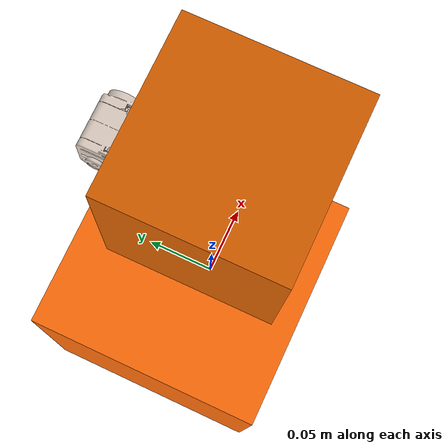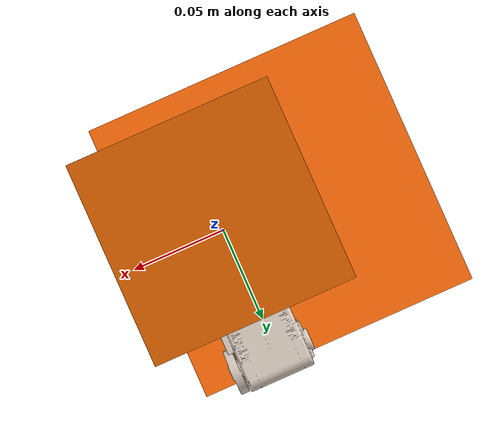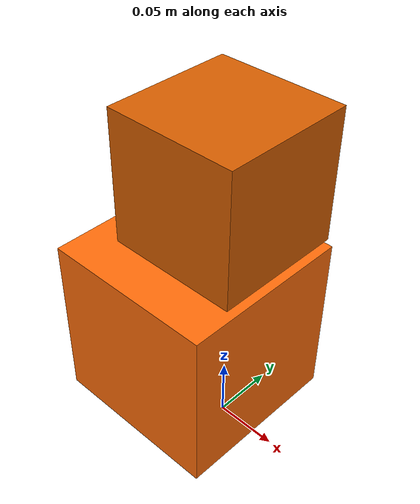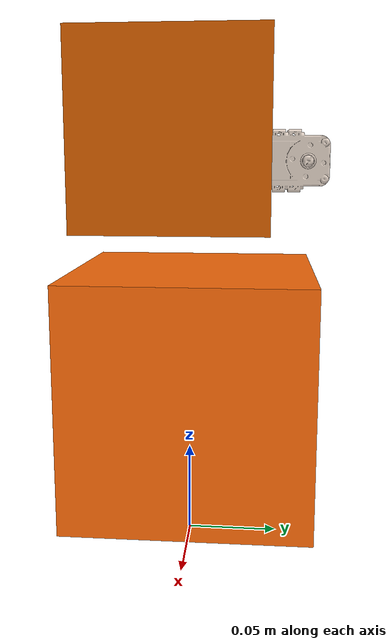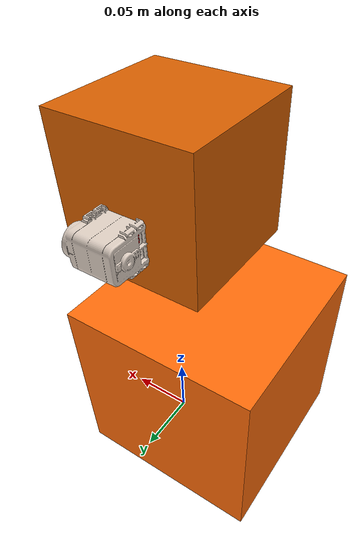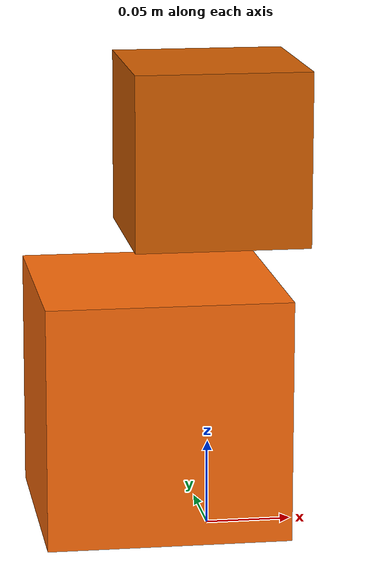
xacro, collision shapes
<?xml version="1.0" ?>
<robot name="tb3_kai" xmlns:xacro="http://ros.org/wiki/xacro">
  <xacro:include filename="$(find tb3kai_spinhokuyo)/urdf/common_properties.xacro"/>
  <xacro:include filename="$(find tb3kai_spinhokuyo)/urdf/turtlebot3_burger.gazebo.xacro"/>

  <!-- World -->
  <link name="world">
  </link>

  <!-- World fixed joint-->
  <joint name="world_fixed" type="fixed">
    <origin xyz="0 0 0" rpy="0 0 0"/>
    <parent link="world"/>
    <child link="base_footprint"/>
  </joint>

  <link name="base_footprint"/>

  <joint name="base_joint" type="fixed">
    <parent link="base_footprint"/>
    <child link="base_link"/>
    <origin xyz="0.0 0.0 0.010" rpy="0 0 0"/>
  </joint>

  <link name="base_link">
    <visual>
      <origin xyz="-0.032 0 0.0" rpy="0 0 0"/>
      <geometry>
        <mesh filename="package://tb3kai_description/meshes/bases/burger_base.stl" scale="0.001 0.001 0.001"/>
      </geometry>
      <material name="orange"/>
    </visual>

    <collision>
      <origin xyz="-0.032 0 0.070" rpy="0 0 0"/>
      <geometry>
        <box size="0.140 0.140 0.140"/>
      </geometry>
    </collision>

    <inertial>
      <origin xyz="-0.032 0 0" rpy="0 0 0"/>
      <mass value="1"/>
      <inertia ixx="0.01" ixy="0.0" ixz="0.0"
               iyy="0.01" iyz="0.0"
               izz="0.01" />
    </inertial>
  </link>

  <!-- AX-18 Motor and stand -->
  <joint name="laser_servo_base_joint" type="fixed">
    <parent link="base_link"/>
    <child link="laser_servo_link"/>
    <origin xyz="0 ${0.051+0.002-0.007} ${0.158+0.038+0.0071}" rpy="0 0 0"/>
    <axis xyz="0 1 0"/>
  </joint>

  <link name="laser_servo_link">
    <visual>
        <origin xyz="0.0003 0 -0.0168" rpy="${M_PI*0.5} 0 -${M_PI*0.5}"/>
      <geometry>
        <mesh filename="package://tb3kai_description/meshes/bases/Ax18.stl" scale="0.001 0.001 0.001"/>
      </geometry>
      <material name="brown"/>
    </visual>

    <collision>
      <origin xyz="0 0 0" rpy="0 0 0"/>
      <geometry>
        <mesh filename="package://tb3kai_description/meshes/bases/Ax18.stl" scale="0.001 0.001 0.001"/>
      </geometry>
    </collision>

    <inertial>
      <origin xyz="0 0 0" />
      <mass value="0.082" />
      <inertia ixx="0.1" ixy="0.0" ixz="0.0"
               iyy="0.1" iyz="0.0"
               izz="0.1" />
    </inertial>

  </link>
  <!-- End of AX-18 -->

  <!-- Add it for Spin Hokuyo -->
  <joint name="laser_holder_joint" type="revolute"><!-- change type to revolute with limited range -->
    <parent link="base_link"/>
    <child link="laser_holder_link"/>
    <origin xyz="0 0.026 ${0.158+0.038+0.007}" rpy="0 0 0"/>
    <axis xyz="0 1 0"/>
    <limit velocity="8.0" effort="1000" lower="${-M_PI}" upper="${M_PI}" />
  </joint>

  <link name="laser_holder_link">
    <visual>
        <origin xyz="0 0 -0.009" rpy="-${M_PI*0.5} 0 ${M_PI}"/>
      <geometry>
        <mesh filename="package://tb3kai_description/meshes/sensors/laserHolder.stl" scale="0.001 0.001 0.001"/>
      </geometry>
      <material name="red"/>
    </visual>

    <collision>
      <origin xyz="0 0 0" rpy="0 0 0"/>
      <geometry>
        <mesh filename="package://tb3kai_description/meshes/sensors/laserHolder.stl" scale="0.001 0.001 0.001"/>
      </geometry>
    </collision>

    <inertial>
      <origin xyz="0 0 0" />
      <mass value="0.100" />
      <inertia ixx="0.1" ixy="0.0" ixz="0.0"
               iyy="0.1" iyz="0.0"
               izz="0.1" />
    </inertial>

  </link>
  <!-- End of Spin Hokuyo -->

  <!-- Transmission AX-18A ID 3 -->
  <transmission name="tran1">
    <type>transmission_interface/SimpleTransmission</type>
    <joint name="laser_holder_joint">
      <hardwareInterface>hardware_interface/EffortJointInterface</hardwareInterface>
    </joint>
    <actuator name="ax18a3">
      <hardwareInterface>hardware_interface/EffortJointInterface</hardwareInterface>
      <mechanicalReduction>1</mechanicalReduction>
    </actuator>
  </transmission>

  <!-- URG Hokuyo -->
  <joint name="holder_urg_joint" type="fixed">
      <axis xyz="0 0 1" />
      <origin xyz="0 -0.032 ${0.009+0.0054}" rpy="0 0 0"/>
      <parent link="laser_holder_link"/>
      <child link="urg_link"/>
  </joint>

  <link name="urg_link">
      <collision>
          <origin xyz="0 0 0" rpy="0 0 0"/>
          <geometry>
              <box size="0.1 0.1 0.1"/>
          </geometry>
      </collision>
      <visual>
          <origin xyz="0 0 0" rpy="0 0 0"/>
          <geometry>
              <mesh filename="package://tb3kai_description/meshes/sensors/hokuyo.dae"/>
          </geometry>
      </visual>
      <inertial>
          <mass value="1e-5" />
          <origin xyz="0 0 0" rpy="0 0 0"/>
          <inertia ixx="1e-6" ixy="0" ixz="0" iyy="1e-6" iyz="0" izz="1e-6" />
      </inertial>
  </link>
  <!-- End URG Hokuyo -->

</robot>

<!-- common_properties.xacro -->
<robot name="xacro_properties" xmlns:xacro="http://ros.org/wiki/xacro">
  <xacro:property name="M_PI" value="3.1415926535897931" />

  <!-- Init colour -->
  <material name="black">
      <color rgba="0.0 0.0 0.0 1.0"/>
  </material>

  <material name="dark">
    <color rgba="0.3 0.3 0.3 1.0"/>
  </material>
  <material name="light_black">
    <color rgba="0.4 0.4 0.4 1.0"/>
  </material>

  <material name="blue">
    <color rgba="0.0 0.0 0.8 1.0"/>
  </material>

  <material name="green">
    <color rgba="0.0 0.8 0.0 1.0"/>
  </material>

  <material name="grey">
    <color rgba="0.5 0.5 0.5 1.0"/>
  </material>

  <material name="orange">
    <color rgba="${255/255} ${108/255} ${10/255} 1.0"/>
  </material>

  <material name="brown">
    <color rgba="${222/255} ${207/255} ${195/255} 1.0"/>
  </material>

  <material name="red">
    <color rgba="0.8 0.0 0.0 1.0"/>
  </material>

  <material name="white">
    <color rgba="1.0 1.0 1.0 1.0"/>
  </material>
</robot>
